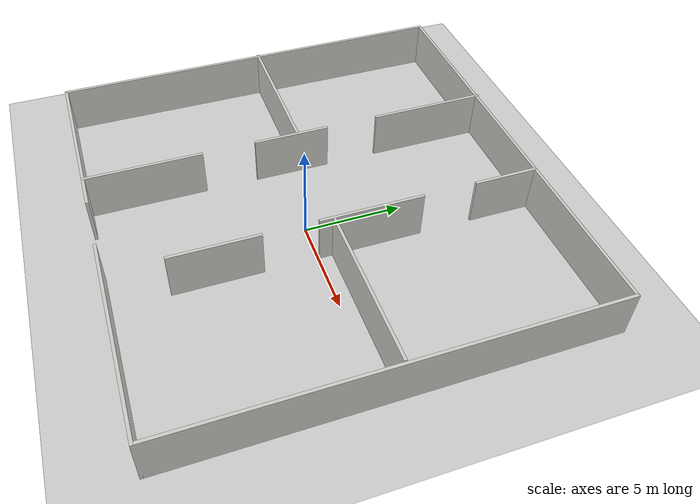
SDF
<sdf version="1.4">
  <world name="default">

    <scene>
      <ambient>0.4 0.4 0.4 1</ambient>
      <background>0.7 0.7 0.7 1</background>
      <shadows>true</shadows>
    </scene>

    <!-- A global light source -->
    <include>
      <uri>model://sun</uri>
    </include>

    <!-- A ground plane -->
    <include>
      <uri>model://ground_plane</uri>
    </include>

    <physics type="ode">
      <real_time_update_rate>1000.0</real_time_update_rate>
      <max_step_size>0.001</max_step_size>
      <real_time_factor>1</real_time_factor>
      <ode>
        <solver>
          <type>quick</type>
          <iters>150</iters>
          <precon_iters>0</precon_iters>
          <sor>1.400000</sor>
          <use_dynamic_moi_rescaling>1</use_dynamic_moi_rescaling>
        </solver>
        <constraints>
          <cfm>0.00001</cfm>
          <erp>0.2</erp>
          <contact_max_correcting_vel>2000.000000</contact_max_correcting_vel>
          <contact_surface_layer>0.01000</contact_surface_layer>
        </constraints>
      </ode>
    </physics>

    <!-- A ground plane -->
    <include>
      <uri>model://TP_Scene3</uri>
    </include>
  </world>

</sdf>

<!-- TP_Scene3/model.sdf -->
<sdf version='1.7'>
  <model name='TP_Scene3'>
    <pose>-0.844964 0.723773 0 0 -0 0</pose>
    <link name='Wall_0'>
      <collision name='Wall_0_Collision'>
        <geometry>
          <box>
            <size>21.25 0.15 2.5</size>
          </box>
        </geometry>
        <pose>0 0 1.25 0 -0 0</pose>
      </collision>
      <visual name='Wall_0_Visual'>
        <pose>0 0 1.25 0 -0 0</pose>
        <geometry>
          <box>
            <size>21.25 0.15 2.5</size>
          </box>
        </geometry>
        <material>
          <script>
            <uri>file://media/materials/scripts/gazebo.material</uri>
            <name>Gazebo/CeilingTiled</name>
          </script>
          <ambient>0.921569 0.807843 0.615686 1</ambient>
        </material>
        <meta>
          <layer>0</layer>
        </meta>
      </visual>
      <pose>-11.0135 -0.02783 0 0 -0 1.5708</pose>
    </link>
    <link name='Wall_1'>
      <collision name='Wall_1_Collision'>
        <geometry>
          <box>
            <size>22.25 0.15 2.5</size>
          </box>
        </geometry>
        <pose>0 0 1.25 0 -0 0</pose>
      </collision>
      <visual name='Wall_1_Visual'>
        <pose>0 0 1.25 0 -0 0</pose>
        <geometry>
          <box>
            <size>22.25 0.15 2.5</size>
          </box>
        </geometry>
        <material>
          <script>
            <uri>file://media/materials/scripts/gazebo.material</uri>
            <name>Gazebo/CeilingTiled</name>
          </script>
          <ambient>0.921569 0.807843 0.615686 1</ambient>
        </material>
        <meta>
          <layer>0</layer>
        </meta>
      </visual>
      <pose>0.036465 10.5222 0 0 -0 0</pose>
    </link>
    <link name='Wall_2'>
      <collision name='Wall_2_Collision'>
        <geometry>
          <box>
            <size>21.25 0.15 2.5</size>
          </box>
        </geometry>
        <pose>0 0 1.25 0 -0 0</pose>
      </collision>
      <visual name='Wall_2_Visual'>
        <pose>0 0 1.25 0 -0 0</pose>
        <geometry>
          <box>
            <size>21.25 0.15 2.5</size>
          </box>
        </geometry>
        <material>
          <script>
            <uri>file://media/materials/scripts/gazebo.material</uri>
            <name>Gazebo/CeilingTiled</name>
          </script>
          <ambient>0.921569 0.807843 0.615686 1</ambient>
        </material>
        <meta>
          <layer>0</layer>
        </meta>
      </visual>
      <pose>11.0865 -0.02783 0 0 -0 -1.5708</pose>
    </link>
    <link name='Wall_25'>
      <collision name='Wall_25_Collision'>
        <geometry>
          <box>
            <size>7.5 0.15 2.5</size>
          </box>
        </geometry>
        <pose>0 0 1.25 0 -0 0</pose>
      </collision>
      <visual name='Wall_25_Visual'>
        <pose>0 0 1.25 0 -0 0</pose>
        <geometry>
          <box>
            <size>7.5 0.15 2.5</size>
          </box>
        </geometry>
        <material>
          <script>
            <uri>file://media/materials/scripts/gazebo.material</uri>
            <name>Gazebo/CeilingTiled</name>
          </script>
          <ambient>0.921569 0.807843 0.615686 1</ambient>
        </material>
        <meta>
          <layer>0</layer>
        </meta>
      </visual>
      <pose>-7.41147 0.333977 0 0 -0 3.14159</pose>
    </link>
    <link name='Wall_3'>
      <collision name='Wall_3_Collision'>
        <geometry>
          <box>
            <size>10.25 0.15 2.5</size>
          </box>
        </geometry>
        <pose>0 0 1.25 0 -0 0</pose>
      </collision>
      <visual name='Wall_3_Visual'>
        <pose>0 0 1.25 0 -0 0</pose>
        <geometry>
          <box>
            <size>10.25 0.15 2.5</size>
          </box>
        </geometry>
        <material>
          <script>
            <uri>file://media/materials/scripts/gazebo.material</uri>
            <name>Gazebo/CeilingTiled</name>
          </script>
          <ambient>0.921569 0.807843 0.615686 1</ambient>
        </material>
        <meta>
          <layer>0</layer>
        </meta>
      </visual>
      <pose>6.03646 -10.5778 0 0 -0 3.14159</pose>
    </link>
    <link name='Wall_31'>
      <collision name='Wall_31_Collision'>
        <geometry>
          <box>
            <size>8.25 0.15 2.5</size>
          </box>
        </geometry>
        <pose>0 0 1.25 0 -0 0</pose>
      </collision>
      <visual name='Wall_31_Visual'>
        <pose>0 0 1.25 0 -0 0</pose>
        <geometry>
          <box>
            <size>8.25 0.15 2.5</size>
          </box>
        </geometry>
        <material>
          <script>
            <uri>file://media/materials/scripts/gazebo.material</uri>
            <name>Gazebo/CeilingTiled</name>
          </script>
          <ambient>0.921569 0.807843 0.615686 1</ambient>
        </material>
        <meta>
          <layer>0</layer>
        </meta>
      </visual>
      <pose>6.84816 0.060734 0 0 -0 3.14159</pose>
    </link>
    <link name='Wall_41'>
      <collision name='Wall_41_Collision'>
        <geometry>
          <box>
            <size>9.26136 0.15 2.5</size>
          </box>
        </geometry>
        <pose>0 0 1.25 0 -0 0</pose>
      </collision>
      <visual name='Wall_41_Visual'>
        <pose>0 0 1.25 0 -0 0</pose>
        <geometry>
          <box>
            <size>9.26136 0.15 2.5</size>
          </box>
        </geometry>
        <material>
          <script>
            <uri>file://media/materials/scripts/gazebo.material</uri>
            <name>Gazebo/CeilingTiled</name>
          </script>
          <ambient>0.921569 0.807843 0.615686 1</ambient>
        </material>
        <meta>
          <layer>0</layer>
        </meta>
      </visual>
      <pose>-6.45786 -10.5778 0 0 -0 3.14159</pose>
    </link>
    <link name='Wall_45'>
      <collision name='Wall_45_Collision'>
        <geometry>
          <box>
            <size>6 0.15 2.5</size>
          </box>
        </geometry>
        <pose>0 0 1.25 0 -0 0</pose>
      </collision>
      <visual name='Wall_45_Visual'>
        <pose>0 0 1.25 0 -0 0</pose>
        <geometry>
          <box>
            <size>6 0.15 2.5</size>
          </box>
        </geometry>
        <material>
          <script>
            <uri>file://media/materials/scripts/gazebo.material</uri>
            <name>Gazebo/CeilingTiled</name>
          </script>
          <ambient>0.921569 0.807843 0.615686 1</ambient>
        </material>
        <meta>
          <layer>0</layer>
        </meta>
      </visual>
      <pose>-3.58345 7.65283 0 0 -0 -1.5708</pose>
    </link>
    <link name='Wall_47'>
      <collision name='Wall_47_Collision'>
        <geometry>
          <box>
            <size>3.90359 0.15 2.5</size>
          </box>
        </geometry>
        <pose>0 0 1.25 0 -0 0</pose>
      </collision>
      <visual name='Wall_47_Visual'>
        <pose>0 0 1.25 0 -0 0</pose>
        <geometry>
          <box>
            <size>3.90359 0.15 2.5</size>
          </box>
        </geometry>
        <material>
          <script>
            <uri>file://media/materials/scripts/gazebo.material</uri>
            <name>Gazebo/CeilingTiled</name>
          </script>
          <ambient>0.921569 0.807843 0.615686 1</ambient>
        </material>
        <meta>
          <layer>0</layer>
        </meta>
      </visual>
      <pose>-3.5836 0.001034 0 0 -0 -1.57087</pose>
    </link>
    <link name='Wall_49'>
      <collision name='Wall_49_Collision'>
        <geometry>
          <box>
            <size>6 0.15 2.5</size>
          </box>
        </geometry>
        <pose>0 0 1.25 0 -0 0</pose>
      </collision>
      <visual name='Wall_49_Visual'>
        <pose>0 0 1.25 0 -0 0</pose>
        <geometry>
          <box>
            <size>6 0.15 2.5</size>
          </box>
        </geometry>
        <material>
          <script>
            <uri>file://media/materials/scripts/gazebo.material</uri>
            <name>Gazebo/CeilingTiled</name>
          </script>
          <ambient>0.921569 0.807843 0.615686 1</ambient>
        </material>
        <meta>
          <layer>0</layer>
        </meta>
      </visual>
      <pose>-3.58374 -7.65076 0 0 -0 -1.5708</pose>
    </link>
    <link name='Wall_51'>
      <collision name='Wall_51_Collision'>
        <geometry>
          <box>
            <size>3.25 0.15 2.5</size>
          </box>
        </geometry>
        <pose>0 0 1.25 0 -0 0</pose>
      </collision>
      <visual name='Wall_51_Visual'>
        <pose>0 0 1.25 0 -0 0</pose>
        <geometry>
          <box>
            <size>3.25 0.15 2.5</size>
          </box>
        </geometry>
        <material>
          <script>
            <uri>file://media/materials/scripts/gazebo.material</uri>
            <name>Gazebo/CeilingTiled</name>
          </script>
          <ambient>0.921569 0.807843 0.615686 1</ambient>
        </material>
        <meta>
          <layer>0</layer>
        </meta>
      </visual>
      <pose>2.73107 8.92021 0 0 -0 -1.5708</pose>
    </link>
    <link name='Wall_53'>
      <collision name='Wall_53_Collision'>
        <geometry>
          <box>
            <size>5.25 0.15 2.5</size>
          </box>
        </geometry>
        <pose>0 0 1.25 0 -0 0</pose>
      </collision>
      <visual name='Wall_53_Visual'>
        <pose>0 0 1.25 0 -0 0</pose>
        <geometry>
          <box>
            <size>5.25 0.15 2.5</size>
          </box>
        </geometry>
        <material>
          <script>
            <uri>file://media/materials/scripts/gazebo.material</uri>
            <name>Gazebo/CeilingTiled</name>
          </script>
          <ambient>0.921569 0.807843 0.615686 1</ambient>
        </material>
        <meta>
          <layer>0</layer>
        </meta>
      </visual>
      <pose>2.73107 1.97021 0 0 -0 -1.5708</pose>
    </link>
    <link name='Wall_55'>
      <collision name='Wall_55_Collision'>
        <geometry>
          <box>
            <size>4.45033 0.15 2.5</size>
          </box>
        </geometry>
        <pose>0 0 1.25 0 -0 0</pose>
      </collision>
      <visual name='Wall_55_Visual'>
        <pose>0 0 1.25 0 -0 0</pose>
        <geometry>
          <box>
            <size>4.45033 0.15 2.5</size>
          </box>
        </geometry>
        <material>
          <script>
            <uri>file://media/materials/scripts/gazebo.material</uri>
            <name>Gazebo/CeilingTiled</name>
          </script>
          <ambient>0.921569 0.807843 0.615686 1</ambient>
        </material>
        <meta>
          <layer>0</layer>
        </meta>
      </visual>
      <pose>2.73107 -5.57996 0 0 -0 -1.5708</pose>
    </link>
    <static>1</static>
  </model>
</sdf>
